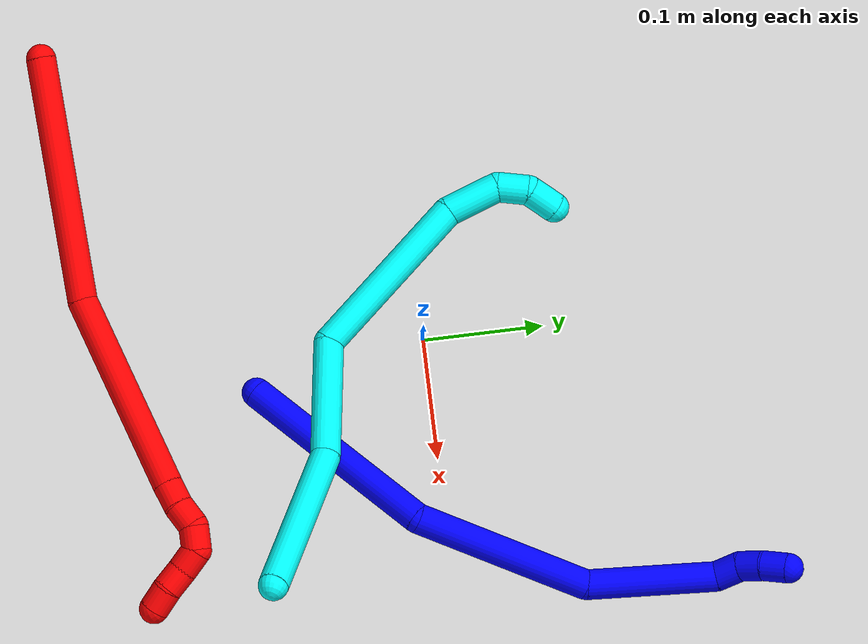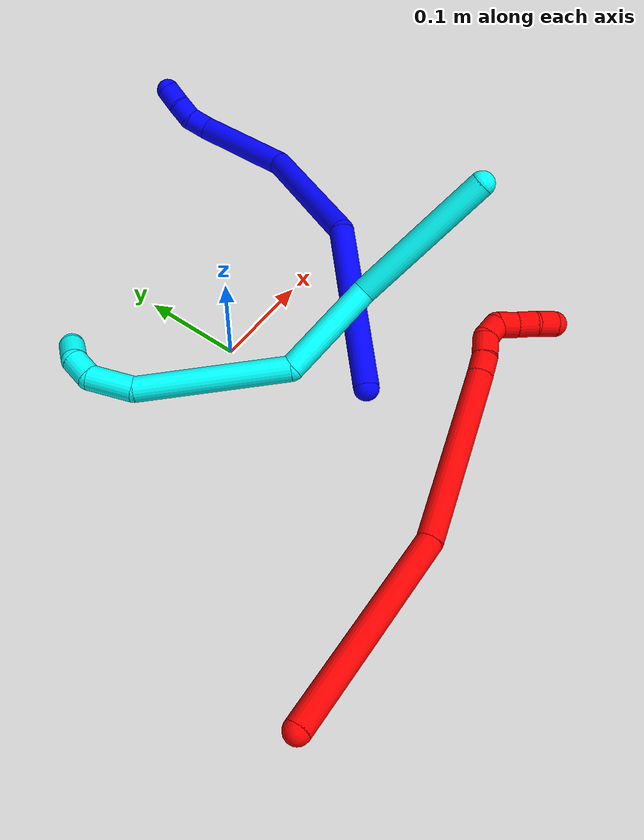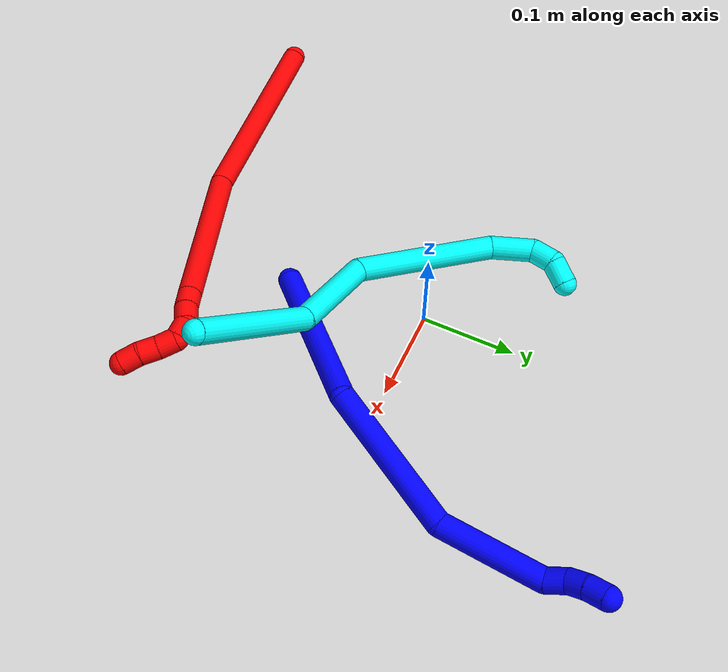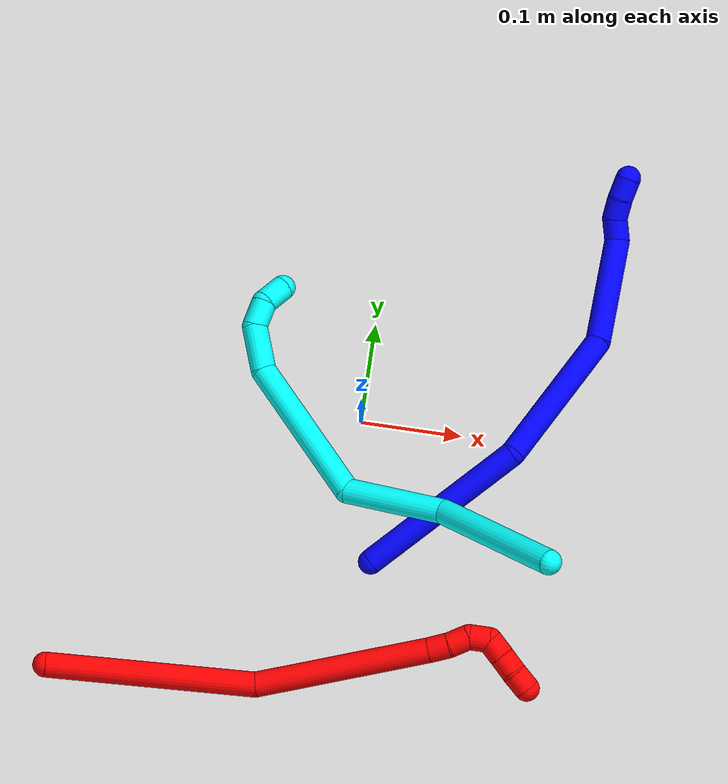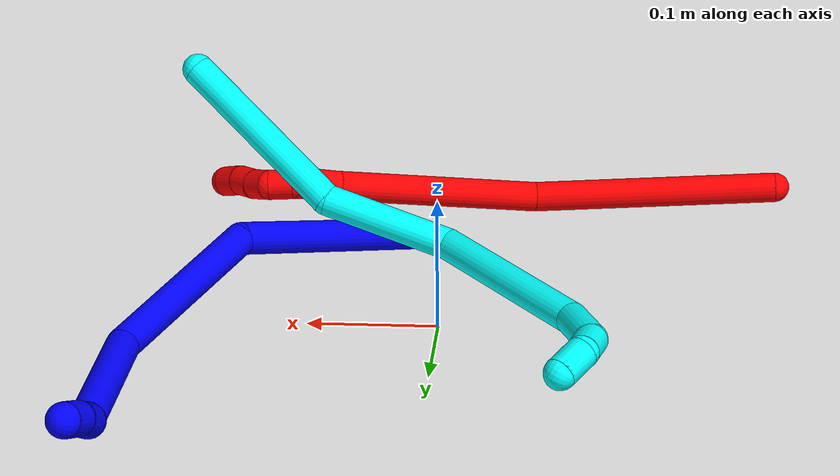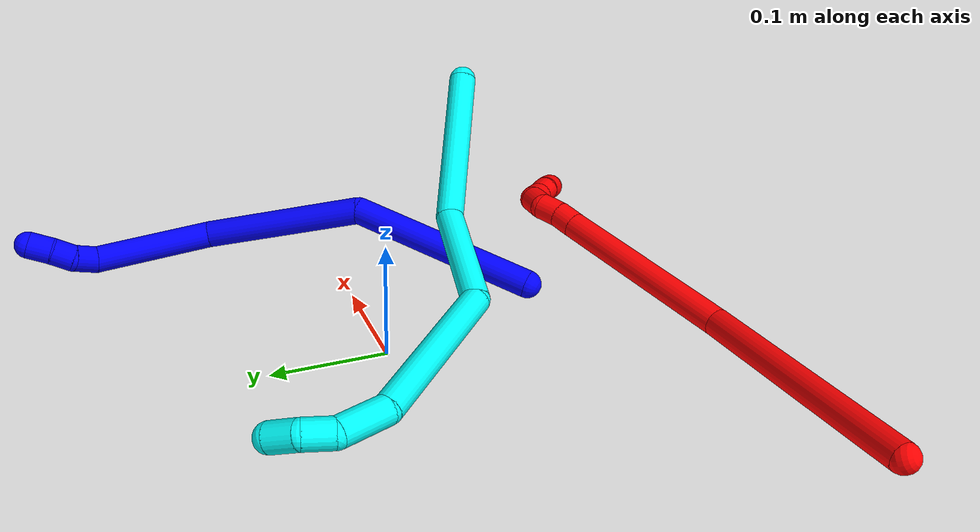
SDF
<sdf version="1.7">
 <world name="default">
  <plugin name="TubeGeneratorPlugin" filename="libtube_generator_plugin.so"/>
  <model name="photoneo_s_sensor">
   <static>1</static>
   <pose>0 0 2 1.57079 1.57079 3.14159</pose>
   <link name="link">
    <inertial><mass>0.1</mass></inertial>
    <sensor name="sensor" type="depth">
     <update_rate>30</update_rate>
     <camera>
      <horizontal_fov>1.22</horizontal_fov>
      <image><width>1920</width><height>1200</height><format>B8G8R8</format></image>
      <clip><near>0.1</near><far>4</far></clip>
      <depth_camera><output>points</output></depth_camera>
     </camera>
     <plugin name="camera_plugin" filename="libgazebo_ros_depth_camera.so">
      <baseline>0.2</baseline>
      <alwaysOn>1</alwaysOn>
      <updateRate>0.0</updateRate>
      <cameraName>camera_ir</cameraName>
      <imageTopicName>/camera/color/image_raw</imageTopicName>
      <cameraInfoTopicName>/camera/color/camera_info</cameraInfoTopicName>
      <depthImageTopicName>/camera/depth/image_raw</depthImageTopicName>
      <depthImageCameraInfoTopicName>/camera/depth/camera_info</depthImageCameraInfoTopicName>
      <pointCloudTopicName>/camera/depth/points</pointCloudTopicName>
      <frameName>fr_optical</frameName>
      <pointCloudCutoff>0.1</pointCloudCutoff>
      <pointCloudCutoffMax>2.0</pointCloudCutoffMax>
      <distortionK1>0</distortionK1>
      <distortionK2>0</distortionK2>
      <distortionK3>0</distortionK3>
      <distortionT1>0</distortionT1>
      <distortionT2>0</distortionT2>
      <CxPrime>0</CxPrime>
      <Cx>0</Cx>
      <Cy>0</Cy>
      <focalLength>0</focalLength>
      <hackBaseline>0</hackBaseline>
     </plugin>
    </sensor>
   </link>
  </model>
  <gravity>0 0 -9.8</gravity>
  <magnetic_field>6e-06 2.3e-05 -4.2e-05</magnetic_field>
  <atmosphere type="adiabatic"/>
  <physics name="default_physics" default="0" type="ode">
   <max_step_size>0.003</max_step_size>
   <real_time_factor>1</real_time_factor>
   <real_time_update_rate>1000</real_time_update_rate>
   <max_contacts>10000</max_contacts>
   <ode>
    <solver>
     <type>quick</type>
     <iters>100</iters>
     <sor>1.3</sor>
     <use_dynamic_moi_rescaling>0</use_dynamic_moi_rescaling>
    </solver>
    <constraints>
     <contact_max_correcting_vel>0</contact_max_correcting_vel>
     <contact_surface_layer>0.001</contact_surface_layer>
     <cfm>0</cfm>
     <erp>0.2</erp>
    </constraints>
   </ode>
  </physics>
  <scene><ambient>0.4 0.4 0.4 1</ambient><background>0.7 0.7 0.7 1</background><shadows>0</shadows></scene>
  <audio><device>default</device></audio>
  <spherical_coordinates>
   <surface_model>EARTH_WGS84</surface_model>
   <latitude_deg>0</latitude_deg>
   <longitude_deg>0</longitude_deg>
   <elevation>0</elevation>
   <heading_deg>0</heading_deg>
  </spherical_coordinates>
  <model name="bin">
   <static>1</static>
   <link name="bottom">
    <collision name="collision-bottom">
     <pose>0 0 -0.01 0 -0 0</pose>
     <geometry><box><size>0.8 0.6 0.02</size></box></geometry>
     <surface>
      <friction><ode><mu>100</mu><mu2>100</mu2></ode></friction>
      <contact><collide_bitmask>65535</collide_bitmask></contact>
     </surface>
    </collision>
   </link>
   <link name="west_wall">
    <collision name="collision-west_wall">
     <pose>-0.41 0 0.1 0 -0 0</pose>
     <geometry><box><size>0.02 0.6 0.2</size></box></geometry>
     <surface>
      <friction><ode><mu>100</mu><mu2>100</mu2></ode></friction>
      <contact><collide_bitmask>65535</collide_bitmask></contact>
     </surface>
    </collision>
   </link>
   <link name="east_wall">
    <collision name="collision-east_wall">
     <pose>0.41 0 0.1 0 -0 0</pose>
     <geometry><box><size>0.02 0.6 0.2</size></box></geometry>
     <surface>
      <friction><ode><mu>100</mu><mu2>100</mu2></ode></friction>
      <contact><collide_bitmask>65535</collide_bitmask></contact>
     </surface>
    </collision>
   </link>
   <link name="south_wall">
    <collision name="collision-south_wall">
     <pose>0 -0.31 0.1 0 -0 0</pose>
     <geometry><box><size>0.8 0.02 0.2</size></box></geometry>
     <surface>
      <friction><ode><mu>100</mu><mu2>100</mu2></ode></friction>
      <contact><collide_bitmask>65535</collide_bitmask></contact>
     </surface>
    </collision>
   </link>
   <link name="north_wall">
    <collision name="collision-north_wall">
     <pose>0 0.31 0.1 0 -0 0</pose>
     <geometry><box><size>0.8 0.02 0.2</size></box></geometry>
     <surface>
      <friction><ode><mu>100</mu><mu2>100</mu2></ode></friction>
      <contact><collide_bitmask>65535</collide_bitmask></contact>
     </surface>
    </collision>
   </link>
  </model>
  <model name="1">
   <static>0</static>
   <link name="1">
    <collision name="collision-cylinder-e_1_1_4">
     <pose>-0.004863 0.000406 -0.086968 -3.13692 -0.055854 2.97469</pose>
     <geometry><cylinder><radius>0.0125</radius><length>0.174209</length></cylinder></geometry>
     <surface>
      <friction><ode><mu>1.16</mu><mu2>1.16</mu2><slip1>0</slip1><slip2>0</slip2></ode></friction>
      <contact><ode><kp>1e+06</kp><kd>1</kd><max_vel>0</max_vel><min_depth>0.001</min_depth></ode></contact>
     </surface>
    </collision>
    <visual name="visual-cylinder-e_1_1_4">
     <pose>-0.004863 0.000406 -0.086968 -3.13692 -0.055854 2.97469</pose>
     <geometry><cylinder><radius>0.0125</radius><length>0.174209</length></cylinder></geometry>
     <material><ambient>0 0 1 1</ambient></material>
    </visual>
    <collision name="collision-cylinder-e_2_4_5">
     <pose>-0.052974 0.000724 -0.236549 3.14017 -0.604476 -3.13703</pose>
     <geometry><cylinder><radius>0.0125</radius><length>0.152196</length></cylinder></geometry>
     <surface>
      <friction><ode><mu>1.16</mu><mu2>1.16</mu2><slip1>0</slip1><slip2>0</slip2></ode></friction>
      <contact><ode><kp>1e+06</kp><kd>1</kd><max_vel>0</max_vel><min_depth>0.001</min_depth></ode></contact>
     </surface>
    </collision>
    <visual name="visual-cylinder-e_2_4_5">
     <pose>-0.052974 0.000724 -0.236549 3.14017 -0.604476 -3.13703</pose>
     <geometry><cylinder><radius>0.0125</radius><length>0.152196</length></cylinder></geometry>
     <material><ambient>0 0 1 1</ambient></material>
    </visual>
    <collision name="collision-cylinder-e_3_5_6">
     <pose>-0.131547 0.022061 -0.334628 -2.59813 -0.705942 1.84655</pose>
     <geometry><cylinder><radius>0.0125</radius><length>0.108899</length></cylinder></geometry>
     <surface>
      <friction><ode><mu>1.16</mu><mu2>1.16</mu2><slip1>0</slip1><slip2>0</slip2></ode></friction>
      <contact><ode><kp>1e+06</kp><kd>1</kd><max_vel>0</max_vel><min_depth>0.001</min_depth></ode></contact>
     </surface>
    </collision>
    <visual name="visual-cylinder-e_3_5_6">
     <pose>-0.131547 0.022061 -0.334628 -2.59813 -0.705942 1.84655</pose>
     <geometry><cylinder><radius>0.0125</radius><length>0.108899</length></cylinder></geometry>
     <material><ambient>0 0 1 1</ambient></material>
    </visual>
    <collision name="collision-cylinder-e_4_6_7">
     <pose>-0.17047 0.052537 -0.375709 -2.12609 -0.325888 0.574589</pose>
     <geometry><cylinder><radius>0.0125</radius><length>0.022482</length></cylinder></geometry>
     <surface>
      <friction><ode><mu>1.16</mu><mu2>1.16</mu2><slip1>0</slip1><slip2>0</slip2></ode></friction>
      <contact><ode><kp>1e+06</kp><kd>1</kd><max_vel>0</max_vel><min_depth>0.001</min_depth></ode></contact>
     </surface>
    </collision>
    <visual name="visual-cylinder-e_4_6_7">
     <pose>-0.17047 0.052537 -0.375709 -2.12609 -0.325888 0.574589</pose>
     <geometry><cylinder><radius>0.0125</radius><length>0.022482</length></cylinder></geometry>
     <material><ambient>0 0 1 1</ambient></material>
    </visual>
    <collision name="collision-cylinder-e_5_7_8">
     <pose>-0.175351 0.06798 -0.389233 -2.46185 -0.125423 0.351511</pose>
     <geometry><cylinder><radius>0.0125</radius><length>0.020504</length></cylinder></geometry>
     <surface>
      <friction><ode><mu>1.16</mu><mu2>1.16</mu2><slip1>0</slip1><slip2>0</slip2></ode></friction>
      <contact><ode><kp>1e+06</kp><kd>1</kd><max_vel>0</max_vel><min_depth>0.001</min_depth></ode></contact>
     </surface>
    </collision>
    <visual name="visual-cylinder-e_5_7_8">
     <pose>-0.175351 0.06798 -0.389233 -2.46185 -0.125423 0.351511</pose>
     <geometry><cylinder><radius>0.0125</radius><length>0.020504</length></cylinder></geometry>
     <material><ambient>0 0 1 1</ambient></material>
    </visual>
    <collision name="collision-cylinder-e_6_8_2">
     <pose>-0.178956 0.079756 -0.406281 -2.60926 -0.21559 0.755689</pose>
     <geometry><cylinder><radius>0.0125</radius><length>0.021711</length></cylinder></geometry>
     <surface>
      <friction><ode><mu>1.16</mu><mu2>1.16</mu2><slip1>0</slip1><slip2>0</slip2></ode></friction>
      <contact><ode><kp>1e+06</kp><kd>1</kd><max_vel>0</max_vel><min_depth>0.001</min_depth></ode></contact>
     </surface>
    </collision>
    <visual name="visual-cylinder-e_6_8_2">
     <pose>-0.178956 0.079756 -0.406281 -2.60926 -0.21559 0.755689</pose>
     <geometry><cylinder><radius>0.0125</radius><length>0.021711</length></cylinder></geometry>
     <material><ambient>0 0 1 1</ambient></material>
    </visual>
    <collision name="collision-sphere-2">
     <pose>-0.181278 0.085138 -0.415417 0 -0 0</pose>
     <geometry><sphere><radius>0.0125</radius></sphere></geometry>
     <surface>
      <friction><ode><mu>1.16</mu><mu2>1.16</mu2><slip1>0</slip1><slip2>0</slip2></ode></friction>
      <contact><ode><kp>1e+06</kp><kd>1</kd><max_vel>0</max_vel><min_depth>0.001</min_depth></ode></contact>
     </surface>
    </collision>
    <visual name="visual-sphere-2">
     <pose>-0.181278 0.085138 -0.415417 0 -0 0</pose>
     <geometry><sphere><radius>0.0125</radius></sphere></geometry>
     <material><ambient>0 0 1 1</ambient></material>
    </visual>
    <collision name="collision-sphere-4">
     <pose>-0.009725 0.000813 -0.173935 0 -0 0</pose>
     <geometry><sphere><radius>0.0125</radius></sphere></geometry>
     <surface>
      <friction><ode><mu>1.16</mu><mu2>1.16</mu2><slip1>0</slip1><slip2>0</slip2></ode></friction>
      <contact><ode><kp>1e+06</kp><kd>1</kd><max_vel>0</max_vel><min_depth>0.001</min_depth></ode></contact>
     </surface>
    </collision>
    <visual name="visual-sphere-4">
     <pose>-0.009725 0.000813 -0.173935 0 -0 0</pose>
     <geometry><sphere><radius>0.0125</radius></sphere></geometry>
     <material><ambient>0 0 1 1</ambient></material>
    </visual>
    <collision name="collision-sphere-1">
     <geometry><sphere><radius>0.0125</radius></sphere></geometry>
     <surface>
      <friction><ode><mu>1.16</mu><mu2>1.16</mu2><slip1>0</slip1><slip2>0</slip2></ode></friction>
      <contact><ode><kp>1e+06</kp><kd>1</kd><max_vel>0</max_vel><min_depth>0.001</min_depth></ode></contact>
     </surface>
    </collision>
    <visual name="visual-sphere-1">
     <geometry><sphere><radius>0.0125</radius></sphere></geometry>
     <material><ambient>0 0 1 1</ambient></material>
    </visual>
    <collision name="collision-sphere-8">
     <pose>-0.176633 0.074374 -0.397144 0 -0 0</pose>
     <geometry><sphere><radius>0.0125</radius></sphere></geometry>
     <surface>
      <friction><ode><mu>1.16</mu><mu2>1.16</mu2><slip1>0</slip1><slip2>0</slip2></ode></friction>
      <contact><ode><kp>1e+06</kp><kd>1</kd><max_vel>0</max_vel><min_depth>0.001</min_depth></ode></contact>
     </surface>
    </collision>
    <visual name="visual-sphere-8">
     <pose>-0.176633 0.074374 -0.397144 0 -0 0</pose>
     <geometry><sphere><radius>0.0125</radius></sphere></geometry>
     <material><ambient>0 0 1 1</ambient></material>
    </visual>
    <collision name="collision-sphere-5">
     <pose>-0.096223 0.000635 -0.299162 0 -0 0</pose>
     <geometry><sphere><radius>0.0125</radius></sphere></geometry>
     <surface>
      <friction><ode><mu>1.16</mu><mu2>1.16</mu2><slip1>0</slip1><slip2>0</slip2></ode></friction>
      <contact><ode><kp>1e+06</kp><kd>1</kd><max_vel>0</max_vel><min_depth>0.001</min_depth></ode></contact>
     </surface>
    </collision>
    <visual name="visual-sphere-5">
     <pose>-0.096223 0.000635 -0.299162 0 -0 0</pose>
     <geometry><sphere><radius>0.0125</radius></sphere></geometry>
     <material><ambient>0 0 1 1</ambient></material>
    </visual>
    <collision name="collision-sphere-6">
     <pose>-0.166871 0.043488 -0.370094 0 -0 0</pose>
     <geometry><sphere><radius>0.0125</radius></sphere></geometry>
     <surface>
      <friction><ode><mu>1.16</mu><mu2>1.16</mu2><slip1>0</slip1><slip2>0</slip2></ode></friction>
      <contact><ode><kp>1e+06</kp><kd>1</kd><max_vel>0</max_vel><min_depth>0.001</min_depth></ode></contact>
     </surface>
    </collision>
    <visual name="visual-sphere-6">
     <pose>-0.166871 0.043488 -0.370094 0 -0 0</pose>
     <geometry><sphere><radius>0.0125</radius></sphere></geometry>
     <material><ambient>0 0 1 1</ambient></material>
    </visual>
    <collision name="collision-sphere-7">
     <pose>-0.174069 0.061586 -0.381323 0 -0 0</pose>
     <geometry><sphere><radius>0.0125</radius></sphere></geometry>
     <surface>
      <friction><ode><mu>1.16</mu><mu2>1.16</mu2><slip1>0</slip1><slip2>0</slip2></ode></friction>
      <contact><ode><kp>1e+06</kp><kd>1</kd><max_vel>0</max_vel><min_depth>0.001</min_depth></ode></contact>
     </surface>
    </collision>
    <visual name="visual-sphere-7">
     <pose>-0.174069 0.061586 -0.381323 0 -0 0</pose>
     <geometry><sphere><radius>0.0125</radius></sphere></geometry>
     <material><ambient>0 0 1 1</ambient></material>
    </visual>
    <inertial>
     <pose>-0.069096 0.01378 -0.225682 0 -0 0</pose>
     <mass>0.5</mass>
     <inertia>
      <ixx>-0.000563</ixx>
      <ixy>0</ixy>
      <ixz>0</ixz>
      <iyy>0.000965</iyy>
      <iyz>0</iyz>
      <izz>0.000188</izz>
     </inertia>
    </inertial>
   </link>
   <pose>0.029699 -0.14192 0.024022 1.96309 -0.876198 -1.14752</pose>
  </model>
  <model name="2">
   <static>0</static>
   <link name="2">
    <collision name="collision-cylinder-e_1_1_4">
     <pose>-0.024102 0.063671 -0.077051 -2.45099 -0.236617 0.638294</pose>
     <geometry><cylinder><radius>0.0125</radius><length>0.205639</length></cylinder></geometry>
     <surface>
      <friction><ode><mu>1.16</mu><mu2>1.16</mu2><slip1>0</slip1><slip2>0</slip2></ode></friction>
      <contact><ode><kp>1e+06</kp><kd>1</kd><max_vel>0</max_vel><min_depth>0.001</min_depth></ode></contact>
     </surface>
    </collision>
    <visual name="visual-cylinder-e_1_1_4">
     <pose>-0.024102 0.063671 -0.077051 -2.45099 -0.236617 0.638294</pose>
     <geometry><cylinder><radius>0.0125</radius><length>0.205639</length></cylinder></geometry>
     <material><ambient>1 0 0 1</ambient></material>
    </visual>
    <collision name="collision-cylinder-e_2_4_5">
     <pose>-0.092266 0.167092 -0.217129 -2.5789 -0.534 1.51578</pose>
     <geometry><cylinder><radius>0.0125</radius><length>0.173133</length></cylinder></geometry>
     <surface>
      <friction><ode><mu>1.16</mu><mu2>1.16</mu2><slip1>0</slip1><slip2>0</slip2></ode></friction>
      <contact><ode><kp>1e+06</kp><kd>1</kd><max_vel>0</max_vel><min_depth>0.001</min_depth></ode></contact>
     </surface>
    </collision>
    <visual name="visual-cylinder-e_2_4_5">
     <pose>-0.092266 0.167092 -0.217129 -2.5789 -0.534 1.51578</pose>
     <geometry><cylinder><radius>0.0125</radius><length>0.173133</length></cylinder></geometry>
     <material><ambient>1 0 0 1</ambient></material>
    </visual>
    <collision name="collision-cylinder-e_3_5_6">
     <pose>-0.142032 0.211317 -0.287256 -2.57934 -0.597065 1.63433</pose>
     <geometry><cylinder><radius>0.0125</radius><length>0.020298</length></cylinder></geometry>
     <surface>
      <friction><ode><mu>1.16</mu><mu2>1.16</mu2><slip1>0</slip1><slip2>0</slip2></ode></friction>
      <contact><ode><kp>1e+06</kp><kd>1</kd><max_vel>0</max_vel><min_depth>0.001</min_depth></ode></contact>
     </surface>
    </collision>
    <visual name="visual-cylinder-e_3_5_6">
     <pose>-0.142032 0.211317 -0.287256 -2.57934 -0.597065 1.63433</pose>
     <geometry><cylinder><radius>0.0125</radius><length>0.020298</length></cylinder></geometry>
     <material><ambient>1 0 0 1</ambient></material>
    </visual>
    <collision name="collision-cylinder-e_4_6_7">
     <pose>-0.153812 0.218598 -0.302279 -2.80105 -0.625837 2.16468</pose>
     <geometry><cylinder><radius>0.0125</radius><length>0.020738</length></cylinder></geometry>
     <surface>
      <friction><ode><mu>1.16</mu><mu2>1.16</mu2><slip1>0</slip1><slip2>0</slip2></ode></friction>
      <contact><ode><kp>1e+06</kp><kd>1</kd><max_vel>0</max_vel><min_depth>0.001</min_depth></ode></contact>
     </surface>
    </collision>
    <visual name="visual-cylinder-e_4_6_7">
     <pose>-0.153812 0.218598 -0.302279 -2.80105 -0.625837 2.16468</pose>
     <geometry><cylinder><radius>0.0125</radius><length>0.020738</length></cylinder></geometry>
     <material><ambient>1 0 0 1</ambient></material>
    </visual>
    <collision name="collision-cylinder-e_5_7_8">
     <pose>-0.161929 0.227935 -0.317598 -2.41841 -0.204147 0.52895</pose>
     <geometry><cylinder><radius>0.0125</radius><length>0.020154</length></cylinder></geometry>
     <surface>
      <friction><ode><mu>1.16</mu><mu2>1.16</mu2><slip1>0</slip1><slip2>0</slip2></ode></friction>
      <contact><ode><kp>1e+06</kp><kd>1</kd><max_vel>0</max_vel><min_depth>0.001</min_depth></ode></contact>
     </surface>
    </collision>
    <visual name="visual-cylinder-e_5_7_8">
     <pose>-0.161929 0.227935 -0.317598 -2.41841 -0.204147 0.52895</pose>
     <geometry><cylinder><radius>0.0125</radius><length>0.020154</length></cylinder></geometry>
     <material><ambient>1 0 0 1</ambient></material>
    </visual>
    <collision name="collision-cylinder-e_6_8_9">
     <pose>-0.160228 0.243261 -0.327996 -1.89957 0.38298 -0.529243</pose>
     <geometry><cylinder><radius>0.0125</radius><length>0.020037</length></cylinder></geometry>
     <surface>
      <friction><ode><mu>1.16</mu><mu2>1.16</mu2><slip1>0</slip1><slip2>0</slip2></ode></friction>
      <contact><ode><kp>1e+06</kp><kd>1</kd><max_vel>0</max_vel><min_depth>0.001</min_depth></ode></contact>
     </surface>
    </collision>
    <visual name="visual-cylinder-e_6_8_9">
     <pose>-0.160228 0.243261 -0.327996 -1.89957 0.38298 -0.529243</pose>
     <geometry><cylinder><radius>0.0125</radius><length>0.020037</length></cylinder></geometry>
     <material><ambient>1 0 0 1</ambient></material>
    </visual>
    <collision name="collision-cylinder-e_7_9_10">
     <pose>-0.153553 0.261407 -0.33299 -1.7808 0.2975 -0.366184</pose>
     <geometry><cylinder><radius>0.0125</radius><length>0.020001</length></cylinder></geometry>
     <surface>
      <friction><ode><mu>1.16</mu><mu2>1.16</mu2><slip1>0</slip1><slip2>0</slip2></ode></friction>
      <contact><ode><kp>1e+06</kp><kd>1</kd><max_vel>0</max_vel><min_depth>0.001</min_depth></ode></contact>
     </surface>
    </collision>
    <visual name="visual-cylinder-e_7_9_10">
     <pose>-0.153553 0.261407 -0.33299 -1.7808 0.2975 -0.366184</pose>
     <geometry><cylinder><radius>0.0125</radius><length>0.020001</length></cylinder></geometry>
     <material><ambient>1 0 0 1</ambient></material>
    </visual>
    <collision name="collision-cylinder-e_8_10_2">
     <pose>-0.146638 0.279181 -0.338614 -1.97785 0.409755 -0.611901</pose>
     <geometry><cylinder><radius>0.0125</radius><length>0.02</length></cylinder></geometry>
     <surface>
      <friction><ode><mu>1.16</mu><mu2>1.16</mu2><slip1>0</slip1><slip2>0</slip2></ode></friction>
      <contact><ode><kp>1e+06</kp><kd>1</kd><max_vel>0</max_vel><min_depth>0.001</min_depth></ode></contact>
     </surface>
    </collision>
    <visual name="visual-cylinder-e_8_10_2">
     <pose>-0.146638 0.279181 -0.338614 -1.97785 0.409755 -0.611901</pose>
     <geometry><cylinder><radius>0.0125</radius><length>0.02</length></cylinder></geometry>
     <material><ambient>1 0 0 1</ambient></material>
    </visual>
    <collision name="collision-sphere-2">
     <pose>-0.142654 0.287603 -0.342246 0 -0 0</pose>
     <geometry><sphere><radius>0.0125</radius></sphere></geometry>
     <surface>
      <friction><ode><mu>1.16</mu><mu2>1.16</mu2><slip1>0</slip1><slip2>0</slip2></ode></friction>
      <contact><ode><kp>1e+06</kp><kd>1</kd><max_vel>0</max_vel><min_depth>0.001</min_depth></ode></contact>
     </surface>
    </collision>
    <visual name="visual-sphere-2">
     <pose>-0.142654 0.287603 -0.342246 0 -0 0</pose>
     <geometry><sphere><radius>0.0125</radius></sphere></geometry>
     <material><ambient>1 0 0 1</ambient></material>
    </visual>
    <collision name="collision-sphere-10">
     <pose>-0.150621 0.270758 -0.334983 0 -0 0</pose>
     <geometry><sphere><radius>0.0125</radius></sphere></geometry>
     <surface>
      <friction><ode><mu>1.16</mu><mu2>1.16</mu2><slip1>0</slip1><slip2>0</slip2></ode></friction>
      <contact><ode><kp>1e+06</kp><kd>1</kd><max_vel>0</max_vel><min_depth>0.001</min_depth></ode></contact>
     </surface>
    </collision>
    <visual name="visual-sphere-10">
     <pose>-0.150621 0.270758 -0.334983 0 -0 0</pose>
     <geometry><sphere><radius>0.0125</radius></sphere></geometry>
     <material><ambient>1 0 0 1</ambient></material>
    </visual>
    <collision name="collision-sphere-9">
     <pose>-0.156484 0.252056 -0.330997 0 -0 0</pose>
     <geometry><sphere><radius>0.0125</radius></sphere></geometry>
     <surface>
      <friction><ode><mu>1.16</mu><mu2>1.16</mu2><slip1>0</slip1><slip2>0</slip2></ode></friction>
      <contact><ode><kp>1e+06</kp><kd>1</kd><max_vel>0</max_vel><min_depth>0.001</min_depth></ode></contact>
     </surface>
    </collision>
    <visual name="visual-sphere-9">
     <pose>-0.156484 0.252056 -0.330997 0 -0 0</pose>
     <geometry><sphere><radius>0.0125</radius></sphere></geometry>
     <material><ambient>1 0 0 1</ambient></material>
    </visual>
    <collision name="collision-sphere-4">
     <pose>-0.048205 0.127341 -0.154103 0 -0 0</pose>
     <geometry><sphere><radius>0.0125</radius></sphere></geometry>
     <surface>
      <friction><ode><mu>1.16</mu><mu2>1.16</mu2><slip1>0</slip1><slip2>0</slip2></ode></friction>
      <contact><ode><kp>1e+06</kp><kd>1</kd><max_vel>0</max_vel><min_depth>0.001</min_depth></ode></contact>
     </surface>
    </collision>
    <visual name="visual-sphere-4">
     <pose>-0.048205 0.127341 -0.154103 0 -0 0</pose>
     <geometry><sphere><radius>0.0125</radius></sphere></geometry>
     <material><ambient>1 0 0 1</ambient></material>
    </visual>
    <collision name="collision-sphere-1">
     <geometry><sphere><radius>0.0125</radius></sphere></geometry>
     <surface>
      <friction><ode><mu>1.16</mu><mu2>1.16</mu2><slip1>0</slip1><slip2>0</slip2></ode></friction>
      <contact><ode><kp>1e+06</kp><kd>1</kd><max_vel>0</max_vel><min_depth>0.001</min_depth></ode></contact>
     </surface>
    </collision>
    <visual name="visual-sphere-1">
     <geometry><sphere><radius>0.0125</radius></sphere></geometry>
     <material><ambient>1 0 0 1</ambient></material>
    </visual>
    <collision name="collision-sphere-8">
     <pose>-0.163972 0.234465 -0.324995 0 -0 0</pose>
     <geometry><sphere><radius>0.0125</radius></sphere></geometry>
     <surface>
      <friction><ode><mu>1.16</mu><mu2>1.16</mu2><slip1>0</slip1><slip2>0</slip2></ode></friction>
      <contact><ode><kp>1e+06</kp><kd>1</kd><max_vel>0</max_vel><min_depth>0.001</min_depth></ode></contact>
     </surface>
    </collision>
    <visual name="visual-sphere-8">
     <pose>-0.163972 0.234465 -0.324995 0 -0 0</pose>
     <geometry><sphere><radius>0.0125</radius></sphere></geometry>
     <material><ambient>1 0 0 1</ambient></material>
    </visual>
    <collision name="collision-sphere-5">
     <pose>-0.136326 0.206843 -0.280155 0 -0 0</pose>
     <geometry><sphere><radius>0.0125</radius></sphere></geometry>
     <surface>
      <friction><ode><mu>1.16</mu><mu2>1.16</mu2><slip1>0</slip1><slip2>0</slip2></ode></friction>
      <contact><ode><kp>1e+06</kp><kd>1</kd><max_vel>0</max_vel><min_depth>0.001</min_depth></ode></contact>
     </surface>
    </collision>
    <visual name="visual-sphere-5">
     <pose>-0.136326 0.206843 -0.280155 0 -0 0</pose>
     <geometry><sphere><radius>0.0125</radius></sphere></geometry>
     <material><ambient>1 0 0 1</ambient></material>
    </visual>
    <collision name="collision-sphere-6">
     <pose>-0.147738 0.215791 -0.294357 0 -0 0</pose>
     <geometry><sphere><radius>0.0125</radius></sphere></geometry>
     <surface>
      <friction><ode><mu>1.16</mu><mu2>1.16</mu2><slip1>0</slip1><slip2>0</slip2></ode></friction>
      <contact><ode><kp>1e+06</kp><kd>1</kd><max_vel>0</max_vel><min_depth>0.001</min_depth></ode></contact>
     </surface>
    </collision>
    <visual name="visual-sphere-6">
     <pose>-0.147738 0.215791 -0.294357 0 -0 0</pose>
     <geometry><sphere><radius>0.0125</radius></sphere></geometry>
     <material><ambient>1 0 0 1</ambient></material>
    </visual>
    <collision name="collision-sphere-7">
     <pose>-0.159886 0.221405 -0.3102 0 -0 0</pose>
     <geometry><sphere><radius>0.0125</radius></sphere></geometry>
     <surface>
      <friction><ode><mu>1.16</mu><mu2>1.16</mu2><slip1>0</slip1><slip2>0</slip2></ode></friction>
      <contact><ode><kp>1e+06</kp><kd>1</kd><max_vel>0</max_vel><min_depth>0.001</min_depth></ode></contact>
     </surface>
    </collision>
    <visual name="visual-sphere-7">
     <pose>-0.159886 0.221405 -0.3102 0 -0 0</pose>
     <geometry><sphere><radius>0.0125</radius></sphere></geometry>
     <material><ambient>1 0 0 1</ambient></material>
    </visual>
    <inertial>
     <pose>-0.078963 0.14225 -0.183884 0 -0 0</pose>
     <mass>0.5</mass>
     <inertia>
      <ixx>0.001389</ixx>
      <ixy>0</ixy>
      <ixz>0</ixz>
      <iyy>0.000536</iyy>
      <iyz>0</iyz>
      <izz>-0.000292</izz>
     </inertia>
    </inertial>
   </link>
   <pose>-0.26968 -0.28759 0.021027 0.484972 0.913799 -1.97252</pose>
  </model>
  <model name="3">
   <static>0</static>
   <link name="3">
    <collision name="collision-cylinder-e_1_1_4">
     <pose>0.014602 0.011446 -0.072589 -2.98519 0.196146 -1.79646</pose>
     <geometry><cylinder><radius>0.0125</radius><length>0.149844</length></cylinder></geometry>
     <surface>
      <friction><ode><mu>1.16</mu><mu2>1.16</mu2><slip1>0</slip1><slip2>0</slip2></ode></friction>
      <contact><ode><kp>1e+06</kp><kd>1</kd><max_vel>0</max_vel><min_depth>0.001</min_depth></ode></contact>
     </surface>
    </collision>
    <visual name="visual-cylinder-e_1_1_4">
     <pose>0.014602 0.011446 -0.072589 -2.98519 0.196146 -1.79646</pose>
     <geometry><cylinder><radius>0.0125</radius><length>0.149844</length></cylinder></geometry>
     <material><ambient>0.003922 1 0.996078 1</ambient></material>
    </visual>
    <collision name="collision-cylinder-e_2_4_5">
     <pose>0.029322 0.010494 -0.194681 2.89617 0.002327 0.01887</pose>
     <geometry><cylinder><radius>0.0125</radius><length>0.102065</length></cylinder></geometry>
     <surface>
      <friction><ode><mu>1.16</mu><mu2>1.16</mu2><slip1>0</slip1><slip2>0</slip2></ode></friction>
      <contact><ode><kp>1e+06</kp><kd>1</kd><max_vel>0</max_vel><min_depth>0.001</min_depth></ode></contact>
     </surface>
    </collision>
    <visual name="visual-cylinder-e_2_4_5">
     <pose>0.029322 0.010494 -0.194681 2.89617 0.002327 0.01887</pose>
     <geometry><cylinder><radius>0.0125</radius><length>0.102065</length></cylinder></geometry>
     <material><ambient>0.003922 1 0.996078 1</ambient></material>
    </visual>
    <collision name="collision-cylinder-e_3_5_6">
     <pose>-0.000459 0.021715 -0.308602 -2.79014 -0.410961 1.73037</pose>
     <geometry><cylinder><radius>0.0125</radius><length>0.149688</length></cylinder></geometry>
     <surface>
      <friction><ode><mu>1.16</mu><mu2>1.16</mu2><slip1>0</slip1><slip2>0</slip2></ode></friction>
      <contact><ode><kp>1e+06</kp><kd>1</kd><max_vel>0</max_vel><min_depth>0.001</min_depth></ode></contact>
     </surface>
    </collision>
    <visual name="visual-cylinder-e_3_5_6">
     <pose>-0.000459 0.021715 -0.308602 -2.79014 -0.410961 1.73037</pose>
     <geometry><cylinder><radius>0.0125</radius><length>0.149688</length></cylinder></geometry>
     <material><ambient>0.003922 1 0.996078 1</ambient></material>
    </visual>
    <collision name="collision-cylinder-e_4_6_7">
     <pose>-0.042699 0.058836 -0.386822 -2.36722 -0.568741 1.24384</pose>
     <geometry><cylinder><radius>0.0125</radius><length>0.045827</length></cylinder></geometry>
     <surface>
      <friction><ode><mu>1.16</mu><mu2>1.16</mu2><slip1>0</slip1><slip2>0</slip2></ode></friction>
      <contact><ode><kp>1e+06</kp><kd>1</kd><max_vel>0</max_vel><min_depth>0.001</min_depth></ode></contact>
     </surface>
    </collision>
    <visual name="visual-cylinder-e_4_6_7">
     <pose>-0.042699 0.058836 -0.386822 -2.36722 -0.568741 1.24384</pose>
     <geometry><cylinder><radius>0.0125</radius><length>0.045827</length></cylinder></geometry>
     <material><ambient>0.003922 1 0.996078 1</ambient></material>
    </visual>
    <collision name="collision-cylinder-e_5_7_8">
     <pose>-0.061059 0.083746 -0.402264 -1.71361 -0.481283 0.551961</pose>
     <geometry><cylinder><radius>0.0125</radius><length>0.026007</length></cylinder></geometry>
     <surface>
      <friction><ode><mu>1.16</mu><mu2>1.16</mu2><slip1>0</slip1><slip2>0</slip2></ode></friction>
      <contact><ode><kp>1e+06</kp><kd>1</kd><max_vel>0</max_vel><min_depth>0.001</min_depth></ode></contact>
     </surface>
    </collision>
    <visual name="visual-cylinder-e_5_7_8">
     <pose>-0.061059 0.083746 -0.402264 -1.71361 -0.481283 0.551961</pose>
     <geometry><cylinder><radius>0.0125</radius><length>0.026007</length></cylinder></geometry>
     <material><ambient>0.003922 1 0.996078 1</ambient></material>
    </visual>
    <collision name="collision-cylinder-e_6_8_2">
     <pose>-0.066549 0.108343 -0.402408 -1.4578 0.039904 -0.035633</pose>
     <geometry><cylinder><radius>0.0125</radius><length>0.026567</length></cylinder></geometry>
     <surface>
      <friction><ode><mu>1.16</mu><mu2>1.16</mu2><slip1>0</slip1><slip2>0</slip2></ode></friction>
      <contact><ode><kp>1e+06</kp><kd>1</kd><max_vel>0</max_vel><min_depth>0.001</min_depth></ode></contact>
     </surface>
    </collision>
    <visual name="visual-cylinder-e_6_8_2">
     <pose>-0.066549 0.108343 -0.402408 -1.4578 0.039904 -0.035633</pose>
     <geometry><cylinder><radius>0.0125</radius><length>0.026567</length></cylinder></geometry>
     <material><ambient>0.003922 1 0.996078 1</ambient></material>
    </visual>
    <collision name="collision-sphere-2">
     <pose>-0.066019 0.121532 -0.400912 0 -0 0</pose>
     <geometry><sphere><radius>0.0125</radius></sphere></geometry>
     <surface>
      <friction><ode><mu>1.16</mu><mu2>1.16</mu2><slip1>0</slip1><slip2>0</slip2></ode></friction>
      <contact><ode><kp>1e+06</kp><kd>1</kd><max_vel>0</max_vel><min_depth>0.001</min_depth></ode></contact>
     </surface>
    </collision>
    <visual name="visual-sphere-2">
     <pose>-0.066019 0.121532 -0.400912 0 -0 0</pose>
     <geometry><sphere><radius>0.0125</radius></sphere></geometry>
     <material><ambient>0.003922 1 0.996078 1</ambient></material>
    </visual>
    <collision name="collision-sphere-4">
     <pose>0.029203 0.022893 -0.145177 0 -0 0</pose>
     <geometry><sphere><radius>0.0125</radius></sphere></geometry>
     <surface>
      <friction><ode><mu>1.16</mu><mu2>1.16</mu2><slip1>0</slip1><slip2>0</slip2></ode></friction>
      <contact><ode><kp>1e+06</kp><kd>1</kd><max_vel>0</max_vel><min_depth>0.001</min_depth></ode></contact>
     </surface>
    </collision>
    <visual name="visual-sphere-4">
     <pose>0.029203 0.022893 -0.145177 0 -0 0</pose>
     <geometry><sphere><radius>0.0125</radius></sphere></geometry>
     <material><ambient>0.003922 1 0.996078 1</ambient></material>
    </visual>
    <collision name="collision-sphere-1">
     <geometry><sphere><radius>0.0125</radius></sphere></geometry>
     <surface>
      <friction><ode><mu>1.16</mu><mu2>1.16</mu2><slip1>0</slip1><slip2>0</slip2></ode></friction>
      <contact><ode><kp>1e+06</kp><kd>1</kd><max_vel>0</max_vel><min_depth>0.001</min_depth></ode></contact>
     </surface>
    </collision>
    <visual name="visual-sphere-1">
     <geometry><sphere><radius>0.0125</radius></sphere></geometry>
     <material><ambient>0.003922 1 0.996078 1</ambient></material>
    </visual>
    <collision name="collision-sphere-8">
     <pose>-0.067079 0.095155 -0.403905 0 -0 0</pose>
     <geometry><sphere><radius>0.0125</radius></sphere></geometry>
     <surface>
      <friction><ode><mu>1.16</mu><mu2>1.16</mu2><slip1>0</slip1><slip2>0</slip2></ode></friction>
      <contact><ode><kp>1e+06</kp><kd>1</kd><max_vel>0</max_vel><min_depth>0.001</min_depth></ode></contact>
     </surface>
    </collision>
    <visual name="visual-sphere-8">
     <pose>-0.067079 0.095155 -0.403905 0 -0 0</pose>
     <geometry><sphere><radius>0.0125</radius></sphere></geometry>
     <material><ambient>0.003922 1 0.996078 1</ambient></material>
    </visual>
    <collision name="collision-sphere-5">
     <pose>0.029441 -0.001906 -0.244184 0 -0 0</pose>
     <geometry><sphere><radius>0.0125</radius></sphere></geometry>
     <surface>
      <friction><ode><mu>1.16</mu><mu2>1.16</mu2><slip1>0</slip1><slip2>0</slip2></ode></friction>
      <contact><ode><kp>1e+06</kp><kd>1</kd><max_vel>0</max_vel><min_depth>0.001</min_depth></ode></contact>
     </surface>
    </collision>
    <visual name="visual-sphere-5">
     <pose>0.029441 -0.001906 -0.244184 0 -0 0</pose>
     <geometry><sphere><radius>0.0125</radius></sphere></geometry>
     <material><ambient>0.003922 1 0.996078 1</ambient></material>
    </visual>
    <collision name="collision-sphere-6">
     <pose>-0.030358 0.045336 -0.373021 0 -0 0</pose>
     <geometry><sphere><radius>0.0125</radius></sphere></geometry>
     <surface>
      <friction><ode><mu>1.16</mu><mu2>1.16</mu2><slip1>0</slip1><slip2>0</slip2></ode></friction>
      <contact><ode><kp>1e+06</kp><kd>1</kd><max_vel>0</max_vel><min_depth>0.001</min_depth></ode></contact>
     </surface>
    </collision>
    <visual name="visual-sphere-6">
     <pose>-0.030358 0.045336 -0.373021 0 -0 0</pose>
     <geometry><sphere><radius>0.0125</radius></sphere></geometry>
     <material><ambient>0.003922 1 0.996078 1</ambient></material>
    </visual>
    <collision name="collision-sphere-7">
     <pose>-0.05504 0.072337 -0.400624 0 -0 0</pose>
     <geometry><sphere><radius>0.0125</radius></sphere></geometry>
     <surface>
      <friction><ode><mu>1.16</mu><mu2>1.16</mu2><slip1>0</slip1><slip2>0</slip2></ode></friction>
      <contact><ode><kp>1e+06</kp><kd>1</kd><max_vel>0</max_vel><min_depth>0.001</min_depth></ode></contact>
     </surface>
    </collision>
    <visual name="visual-sphere-7">
     <pose>-0.05504 0.072337 -0.400624 0 -0 0</pose>
     <geometry><sphere><radius>0.0125</radius></sphere></geometry>
     <material><ambient>0.003922 1 0.996078 1</ambient></material>
    </visual>
    <inertial>
     <pose>-0.000401 0.027579 -0.231642 0 -0 0</pose>
     <mass>0.5</mass>
     <inertia><ixx>-1.5e-05</ixx><ixy>0</ixy><ixz>0</ixz><iyy>7e-05</iyy><iyz>0</iyz><izz>-8.9e-05</izz></inertia>
    </inertial>
   </link>
   <pose>0.201125 -0.145199 0.158376 -0.738593 1.01325 -1.19976</pose>
  </model>
 </world>
</sdf>
